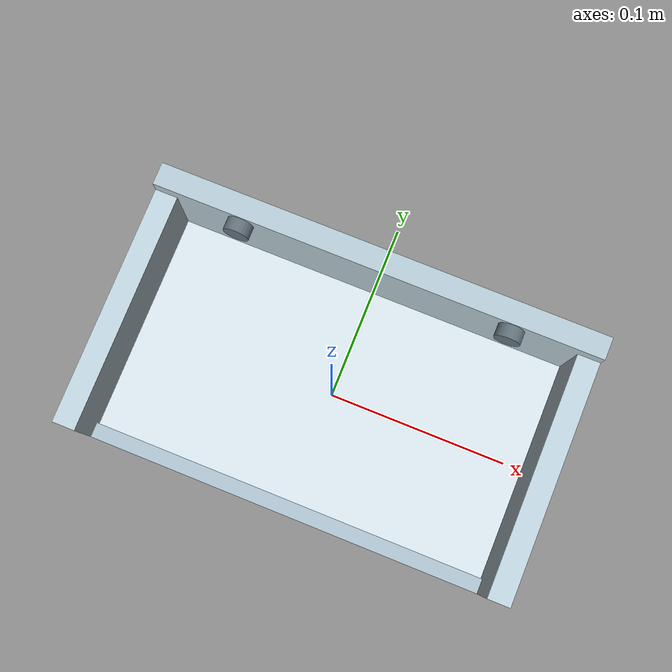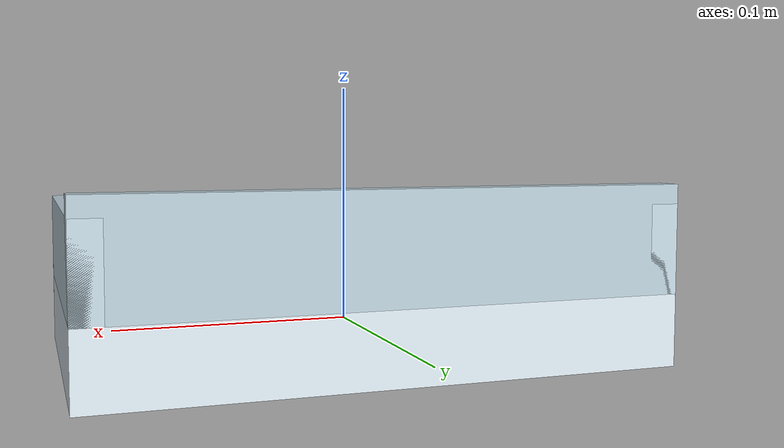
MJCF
<mujoco model="vla82_vla82_055__bathroom_shelf">
  <compiler angle="radian"/>
  <asset>
    <texture name="source_texture" type="2d" file="source_texture.png"/>
    <material name="source_material" texture="source_texture" rgba="1 1 1 1"/>
  </asset>
  <default>
    <default class="visual"><geom contype="0" conaffinity="0" group="1"/></default>
    <default class="collision"><geom contype="1" conaffinity="1" group="0" density="300" friction="0.65 0.006 0.0002" solref="0.02 1" solimp="0.9 0.95 0.001"/></default>
    <default class="region"><geom contype="0" conaffinity="0" group="1" rgba="0 1 0 0" mass="0"/></default>
  </default>
  <worldbody><body><body name="object">
    <geom name="bathroom_shelf_bottom" class="visual" mass="0" type="box" pos="0 0 0" size="0.120000 0.070000 0.015000" rgba="0.86 0.91 0.94 1"/>
    <geom name="bathroom_shelf_back" class="visual" mass="0" type="box" pos="0 0.064000 0.030" size="0.120000 0.006 0.030" rgba="0.72 0.80 0.84 1"/>
    <geom name="bathroom_shelf_left_side" class="visual" mass="0" type="box" pos="-0.114000 0 0.026" size="0.006 0.070000 0.026" rgba="0.76 0.84 0.88 1"/>
    <geom name="bathroom_shelf_right_side" class="visual" mass="0" type="box" pos="0.114000 0 0.026" size="0.006 0.070000 0.026" rgba="0.76 0.84 0.88 1"/>
    <geom name="bathroom_shelf_front_lip" class="visual" mass="0" type="box" pos="0 -0.066000 0.010" size="0.120000 0.004 0.010" rgba="0.68 0.77 0.82 1"/>
    <geom name="bathroom_shelf_mount_left" class="visual" mass="0" type="cylinder" pos="-0.073 0.058000 0.052" size="0.007 0.007" quat="0.7071068 0.7071068 0 0" rgba="0.40 0.46 0.50 1"/>
    <geom name="bathroom_shelf_mount_right" class="visual" mass="0" type="cylinder" pos="0.073 0.058000 0.052" size="0.007 0.007" quat="0.7071068 0.7071068 0 0" rgba="0.40 0.46 0.50 1"/>
    <geom name="collision_bottom" class="collision" type="box" pos="0 0 0" size="0.120000 0.070000 0.015000"/>
    <geom name="collision_back" class="collision" type="box" pos="0 0.064000 0.030" size="0.120000 0.006 0.030"/>
    <geom name="collision_left" class="collision" type="box" pos="-0.114000 0 0.026" size="0.006 0.070000 0.026"/>
    <geom name="collision_right" class="collision" type="box" pos="0.114000 0 0.026" size="0.006 0.070000 0.026"/>
    <geom name="collision_front_lip" class="collision" type="box" pos="0 -0.066000 0.010" size="0.120000 0.004 0.010"/>
    <geom name="reg_bbox" class="region" type="box" pos="0 0 0" size="0.120000 0.070000 0.015000"/>
  </body></body></worldbody>
  <actuator/>
</mujoco>
